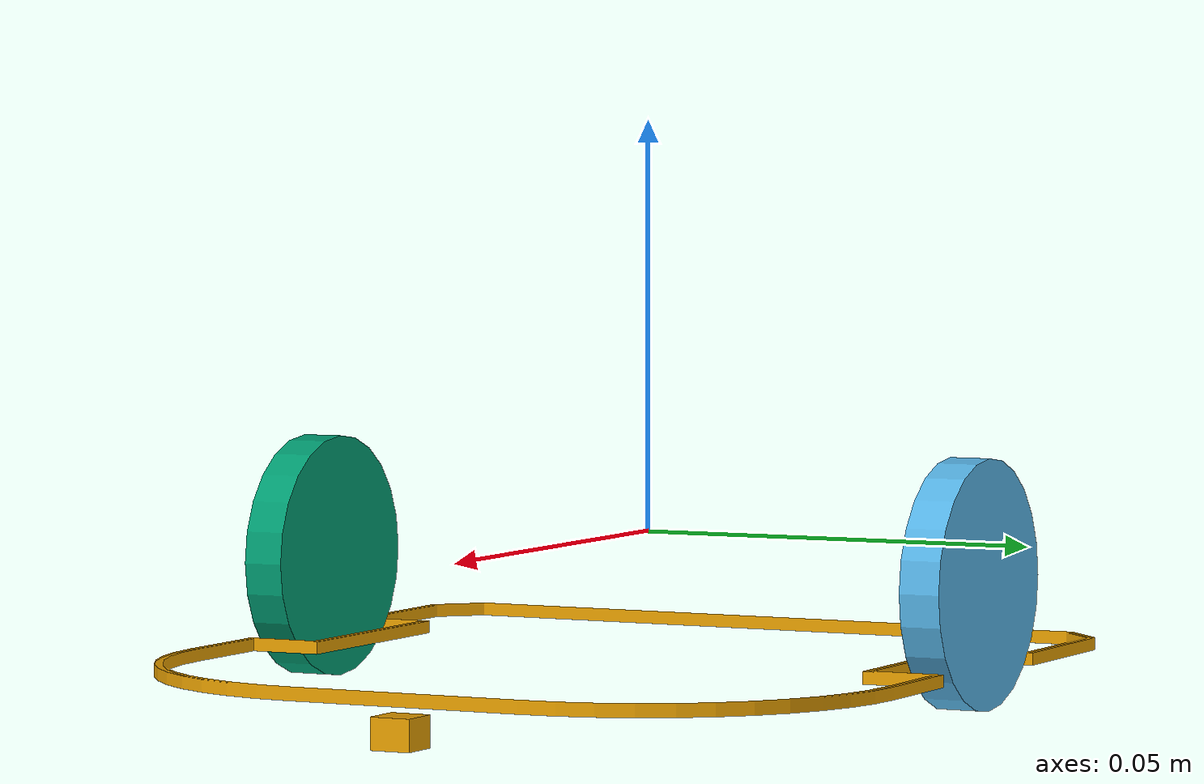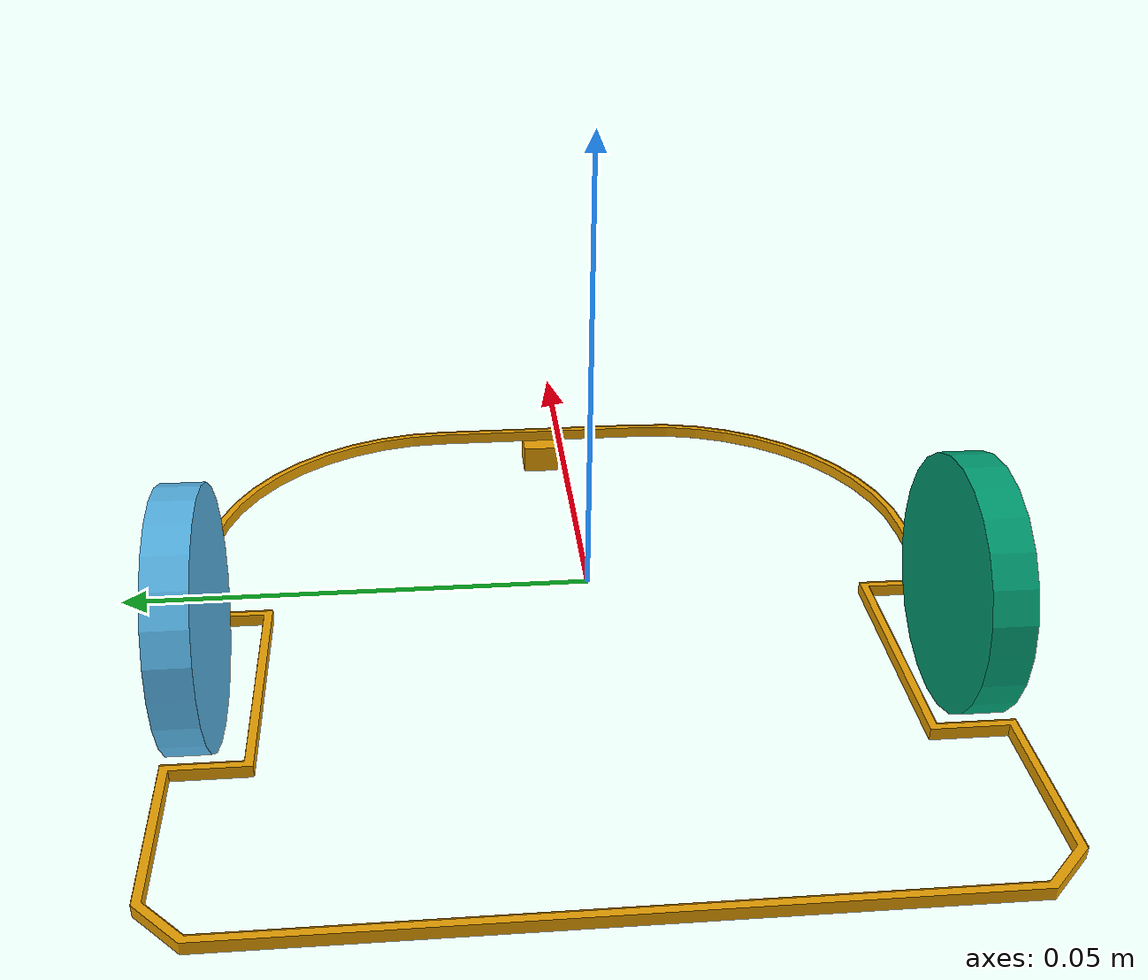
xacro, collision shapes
<?xml version="1.0"?>
<robot name="doogie" xmlns:xacro="http://ros.org/wiki/xacro">

    <!-- Parameters -->
    <xacro:arg name="namespace" default=""/>
    <xacro:arg name="robotParam" default="robot_description"/>

    <!-- Includes -->
    <xacro:include filename="$(find doogie_description)/urdf/common_properties.xacro"/>
    <xacro:include filename="$(find doogie_description)/urdf/doogie_base.xacro"/>
    <xacro:include filename="$(find doogie_description)/urdf/doogie_wheels.xacro"/>
    <xacro:include filename="$(find doogie_description)/urdf/doogie_sensors.xacro"/>

    <!-- Create doogie base -->
    <xacro:doogie_base namespace="$(arg namespace)"/>

    <!-- Create wheels -->
    <xacro:wheels namespace="$(arg namespace)" wheel_name="left">
        <mesh
            filename="package://doogie_description/meshes/collada/wheel.dae"/>
        <origin
            xyz="0.00302 0.0464 -0.00444"
            rpy="1.5708 0 1.5708"/>
        <axis
            xyz="1.0 0.0 0.0"/>
    </xacro:wheels>

    <xacro:wheels namespace="$(arg namespace)" wheel_name="right">
        <mesh
            filename="package://doogie_description/meshes/collada/wheel.dae"/>
        <origin
            xyz="0.00302 -0.0464 -0.00444"
            rpy="1.5708 0 -1.5708"/>
        <axis
            xyz="-1.0 0.0 0.0"/>
    </xacro:wheels>

    <!-- Model Plugins -->
    <gazebo>
        <!-- ros_control plugin -->
        <plugin name="gazebo_ros_control" filename="libgazebo_ros_control.so">

        <!-- robotnamespace tag is not used here because it
             blocks changing robot namespace in extern launchfiles
         -->

            <robotParam>$(arg robotParam)</robotParam>
        </plugin>

        <!-- ground truth plugin -->
        <plugin name="gazebo_ros_p3d" filename="libgazebo_ros_p3d.so">
            <alwaysOn>true</alwaysOn>
            <updateRate>100.0</updateRate>
            <bodyName>$(arg namespace)/base_link</bodyName>
            <topicName>/gazebo/ground_truth</topicName>
        </plugin>
    </gazebo>

    <!--  Add colision sensor plugin -->
    <gazebo reference="$(arg namespace)/base_link">
        <sensor name="bumper_sensor" type="contact">
            <always_on>true</always_on>
            <update_rate>1</update_rate>
            <contact>
                <collision>/base_link_fixed_joint_lump__doogie_collision_collision</collision>
            </contact>
            <plugin name="gazebo_ros_bumper" filename="libgazebo_ros_bumper.so">
                <bumperTopicName>bumper</bumperTopicName>
                <frameName>base_link</frameName>
                <always_on>true</always_on>
                <update_rate>1</update_rate>
            </plugin>
        </sensor>
    </gazebo>

    <!-- Create ir_sensors -->
    <xacro:sensors namespace="$(arg namespace)" sensor_name="left">
        <origin
            xyz="0.023438 0.041802 -0.01074"
            rpy="1.5708 0 0.097308"/>
    </xacro:sensors>

    <xacro:sensors namespace="$(arg namespace)" sensor_name="front_left">
        <origin
            xyz="0.0549597020112072 0.013499578883641 -0.01074"
            rpy="1.5707963267949 0 1.5708"/>
    </xacro:sensors>

    <xacro:sensors namespace="$(arg namespace)" sensor_name="front_right">
        <origin
            xyz="0.0551208644089312 -0.0136426818026577 -0.01074"
            rpy="1.5707963267949 0 -1.5708" />
    </xacro:sensors>

    <xacro:sensors namespace="$(arg namespace)" sensor_name="right">
        <origin
            xyz="0.023438 -0.041802 -0.01074"
            rpy="1.5708 0 -0.097308" />
    </xacro:sensors>

</robot>

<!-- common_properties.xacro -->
<robot name="xacro_properties" xmlns:xacro="http://ros.org/wiki/xacro">
<!-- DEPRECATED -->

  <material name="black">
      <color rgba="0.0 0.0 0.0 1.0"/>
  </material>

  <material name="dark">
    <color rgba="0.3 0.3 0.3 1.0"/>
  </material>
  <material name="light_black">
    <color rgba="0.4 0.4 0.4 1.0"/>
  </material>

  <material name="blue">
    <color rgba="0.0 0.0 0.8 1.0"/>
  </material>

  <material name="green">
    <color rgba="0.0 0.8 0.0 1.0"/>
  </material>

  <material name="grey">
    <color rgba="0.5 0.5 0.5 1.0"/>
  </material>

  <material name="orange">
    <color rgba="${255/255} ${108/255} ${10/255} 1.0"/>
  </material>

  <material name="brown">
    <color rgba="${222/255} ${207/255} ${195/255} 1.0"/>
  </material>

  <material name="red">
    <color rgba="0.8 0.0 0.0 1.0"/>
  </material>

  <material name="white">
    <color rgba="1.0 1.0 1.0 1.0"/>
  </material>
</robot>

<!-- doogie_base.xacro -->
<robot xmlns:xacro="http://ros.org/wiki/xacro">

    <!-- Parameters -->
    <xacro:property name="mass" value="10.0"/>
    <xacro:property name="namespace" value="doogie"/>

    <!-- Includes -->
    <!-- xacro:include filename="$(find doogie_description)/urdf/common_properties.xacro"/ -->
    <!-- macro: base -->
    <xacro:macro name="doogie_base" params="namespace">

    <link name="${namespace}/base_link">

        <inertial>
            <origin
                xyz="0.0247 0.0 -0.0125"
                rpy="0 0 0"/>
            <mass
                value="${mass}"/>
            <inertia
                ixx="10"
                ixy="0"
                ixz="0"
                iyy="10"
                iyz="0"
                izz="10"/>
        </inertial>

        <visual>
            <origin
                xyz="0.0 0.0 0.0"
                rpy="0.0 0.0 0.0"/>
            <geometry>
                <mesh filename="package://doogie_description/meshes/collada/base_link.dae"/>
            </geometry>
        </visual>

        <collision name="doogie_collision">
            <origin
                xyz="0.0 0.0 0.0"
                rpy="0.0 0.0 0.0"/>
            <geometry>
                <mesh filename="package://doogie_description/meshes/stl/doogie_collision.stl"/>
            </geometry>
        </collision>

        <collision>
            <origin
                xyz="0.063 0.0 -0.018"
                rpy="0.0 0.0 0.0"/>
            <geometry>
                <box size="0.005 0.005 -0.0038"/>
            </geometry>
        </collision>

    </link>

    <gazebo reference="${namespace}/base_link">
        <dampingFactor>0.0025</dampingFactor>
        <kp>1000000.0</kp>
        <kd>1.0</kd>
        <mu1>0.0</mu1>
        <mu2>0.0</mu2>
    </gazebo>

    </xacro:macro>
</robot>

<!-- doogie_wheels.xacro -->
<robot xmlns:xacro="http://ros.org/wiki/xacro">

    <!-- Include -->
    <!--xacro:include filename="$(find doogie_description)/urdf/common_properties.xacro"/-->

    <!-- macro: wheel -->
    <xacro:macro name="wheels" params="namespace wheel_name *mesh *origin *axis">

    <link name="${namespace}/wheel/${wheel_name}">

        <inertial>
            <origin
                xyz="0.0033664 1.419E-05 -1.7243E-07"
                rpy="0.0 0.0 0.0"/>
            <mass
                value="0.29447"/>
            <inertia
                ixx="0.2"
                ixy="0"
                ixz="0"
                iyy="0.2"
                iyz="0"
                izz="0.2" />
        </inertial>

        <visual>
            <origin
                xyz="0.0 0.0 0.0"
                rpy="0.0 0.0 0.0"/>
            <geometry>
                <xacro:insert_block name="mesh"/>
            </geometry>
        </visual>

        <collision>
            <origin
                xyz="-0.0025 0.0 0.0"
                rpy="0.0 1.5708 0.0"/>
            <geometry>
                <cylinder radius="0.015" length="0.005"/>
             </geometry>
        </collision>

    </link>

    <joint name="wheel/${wheel_name}_joint" type="continuous">
        <parent
            link="${namespace}/base_link"/>
        <child
            link="${namespace}/wheel/${wheel_name}"/>
        <dynamics
            friction="0.6"
            damping="10.0"/>
        <xacro:insert_block name="origin"/>
        <xacro:insert_block name="axis"/>
    </joint>

    <transmission name="wheel/${wheel_name}_trans" type="SimpleTransmission">
        <type>transmission_interface/SimpleTransmission</type>
        <actuator name="wheel/${wheel_name}_motor">
            <mechanicalReduction>2</mechanicalReduction>
            <hardwareInterface>VelocityJointInterface</hardwareInterface>
        </actuator>
        <joint name="wheel/${wheel_name}_joint">
            <hardwareInterface>hardware_interface/VelocityJointInterface</hardwareInterface>
        </joint>
    </transmission>

    <gazebo reference="${namespace}/wheel/${wheel_name}">
        <kp>1000000.0</kp>
        <kd>1000.0</kd>
        <mu1>5.0</mu1>
        <mu2>5.0</mu2>
        <maxVel>0.5</maxVel>
        <selfCollide>false</selfCollide>
    </gazebo>

    <gazebo reference="wheel/${wheel_name}_joint">
        <provideFeedback>true</provideFeedback>
    </gazebo>

    <gazebo>
      <plugin name="ft_sensor" filename="libgazebo_ros_ft_sensor.so">
        <updateRate>1</updateRate>
        <topicName>wheel/${wheel_name}_joint/ft_sensor_topic</topicName>
        <jointName>wheel/${wheel_name}_joint</jointName>
      </plugin>
    </gazebo>

    </xacro:macro>

</robot>

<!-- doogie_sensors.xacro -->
<robot xmlns:xacro="http://ros.org/wiki/xacro">

    <!-- Includes -->
    <xacro:include filename="$(find doogie_description)/urdf/acessories/ir_sensor.xacro"/>

    <!-- ir_sensor -->
    <xacro:macro name="sensors" params="namespace sensor_name *origin">

        <link name="${namespace}/ir_sensor/${sensor_name}">

            <inertial>
                <origin
                    xyz="0.00099071 9.1697E-06 0.00439"
                    rpy="0.0 0.0 0.0"/>
                <mass
                    value="0.00039017"/>
                <inertia
                    ixx="0.0"
                    ixy="0.0"
                    ixz="0.0"
                    iyy="0.0"
                    iyz="0.0"
                    izz="0.0"/>
            </inertial>

        </link>

        <joint name="ir_sensor/${sensor_name}_joint" type="fixed">

            <parent
                link="${namespace}/base_link"/>
            <child
                link="${namespace}/ir_sensor/${sensor_name}"/>
            <xacro:insert_block name="origin"/>

        </joint>

        <xacro:ir_sensor namespace="${namespace}" sensor_name="${sensor_name}"/>

    </xacro:macro>
</robot>
